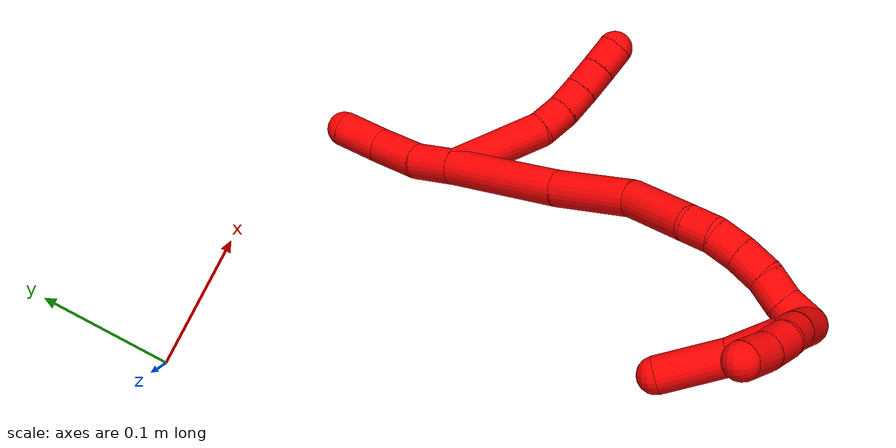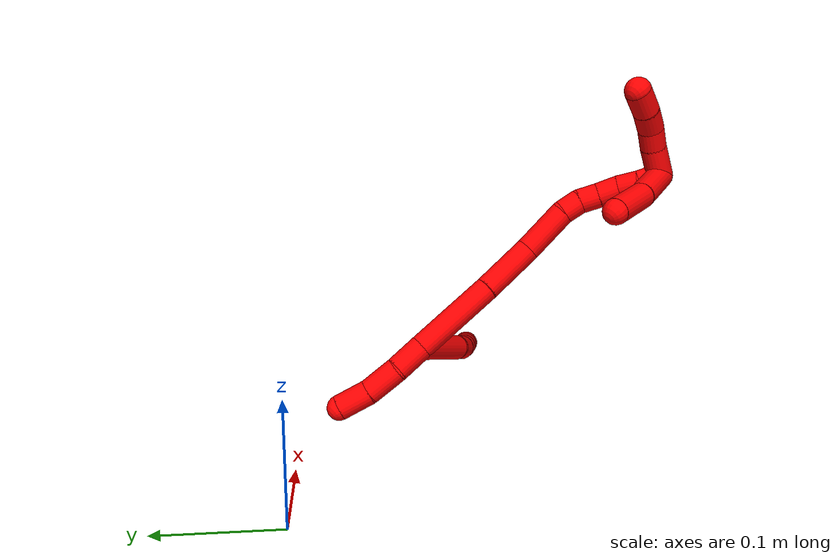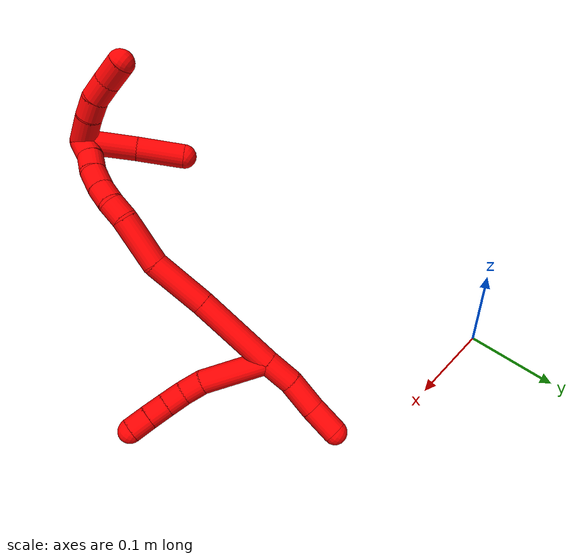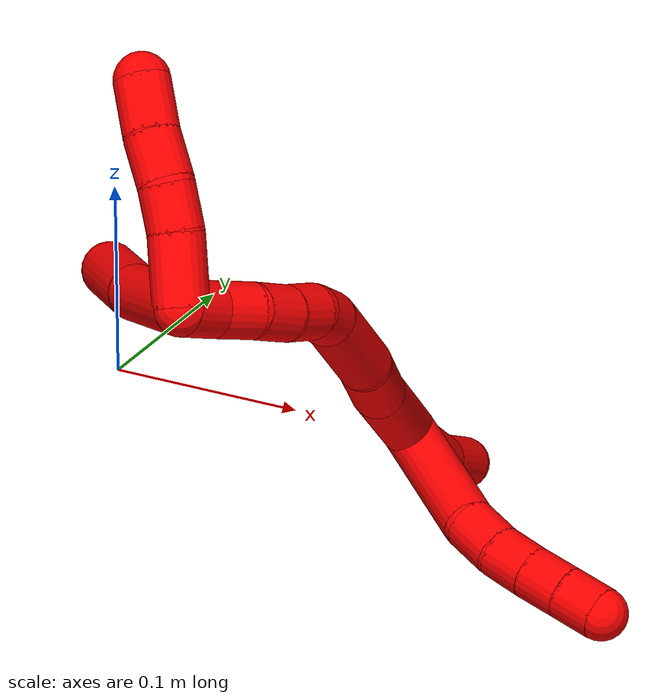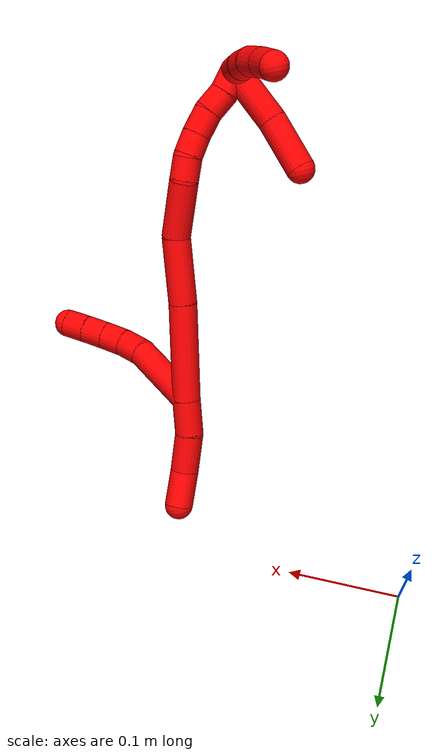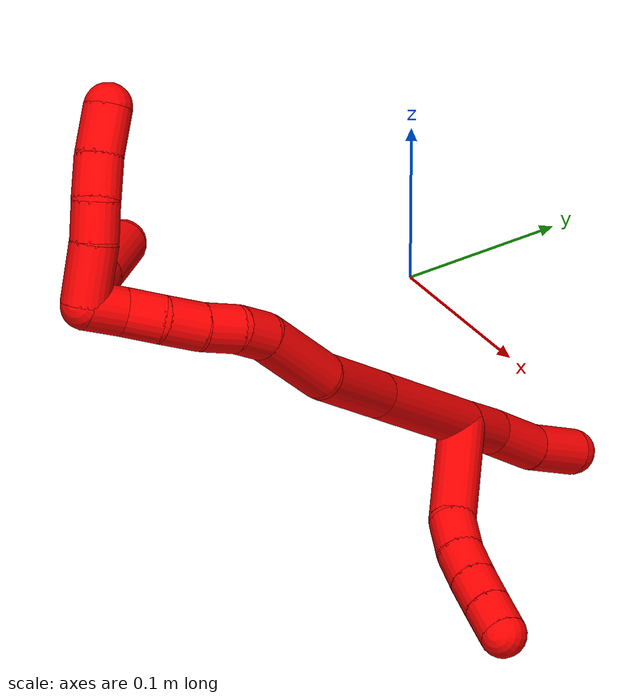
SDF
<sdf version="1.7">
 <world name="default">
  <model name="2">
   <static>0</static>
   <link name="2">
    <collision name="collision-cylinder-e_1_2_8">
     <pose>0.020482 0.019052 0.019681 -0.769148 0.642044 -0.267555</pose>
     <geometry><cylinder><radius>0.0125</radius><length>0.068406</length></cylinder></geometry>
     <surface>
      <friction><ode><mu>1.16</mu><mu2>1.16</mu2><slip1>0</slip1><slip2>0</slip2></ode></friction>
      <contact><ode><kp>1e+06</kp><kd>1</kd><max_vel>0</max_vel><min_depth>0.001</min_depth></ode></contact>
     </surface>
    </collision>
    <visual name="visual-cylinder-e_1_2_8">
     <pose>0.020482 0.019052 0.019681 -0.769148 0.642044 -0.267555</pose>
     <geometry><cylinder><radius>0.0125</radius><length>0.068406</length></cylinder></geometry>
     <material><ambient>1 0 0 1</ambient></material>
    </visual>
    <collision name="collision-cylinder-e_2_8_9">
     <pose>0.046241 0.046231 0.044012 -1.05122 0.513243 -0.302092</pose>
     <geometry><cylinder><radius>0.0125</radius><length>0.021496</length></cylinder></geometry>
     <surface>
      <friction><ode><mu>1.16</mu><mu2>1.16</mu2><slip1>0</slip1><slip2>0</slip2></ode></friction>
      <contact><ode><kp>1e+06</kp><kd>1</kd><max_vel>0</max_vel><min_depth>0.001</min_depth></ode></contact>
     </surface>
    </collision>
    <visual name="visual-cylinder-e_2_8_9">
     <pose>0.046241 0.046231 0.044012 -1.05122 0.513243 -0.302092</pose>
     <geometry><cylinder><radius>0.0125</radius><length>0.021496</length></cylinder></geometry>
     <material><ambient>1 0 0 1</ambient></material>
    </visual>
    <collision name="collision-cylinder-e_3_9_10">
     <pose>0.055128 0.062837 0.052584 -1.13737 0.368758 -0.237266</pose>
     <geometry><cylinder><radius>0.0125</radius><length>0.02003</length></cylinder></geometry>
     <surface>
      <friction><ode><mu>1.16</mu><mu2>1.16</mu2><slip1>0</slip1><slip2>0</slip2></ode></friction>
      <contact><ode><kp>1e+06</kp><kd>1</kd><max_vel>0</max_vel><min_depth>0.001</min_depth></ode></contact>
     </surface>
    </collision>
    <visual name="visual-cylinder-e_3_9_10">
     <pose>0.055128 0.062837 0.052584 -1.13737 0.368758 -0.237266</pose>
     <geometry><cylinder><radius>0.0125</radius><length>0.02003</length></cylinder></geometry>
     <material><ambient>1 0 0 1</ambient></material>
    </visual>
    <collision name="collision-cylinder-e_4_10_11">
     <pose>0.06197 0.079976 0.060394 -1.14901 0.328143 -0.213534</pose>
     <geometry><cylinder><radius>0.0125</radius><length>0.020057</length></cylinder></geometry>
     <surface>
      <friction><ode><mu>1.16</mu><mu2>1.16</mu2><slip1>0</slip1><slip2>0</slip2></ode></friction>
      <contact><ode><kp>1e+06</kp><kd>1</kd><max_vel>0</max_vel><min_depth>0.001</min_depth></ode></contact>
     </surface>
    </collision>
    <visual name="visual-cylinder-e_4_10_11">
     <pose>0.06197 0.079976 0.060394 -1.14901 0.328143 -0.213534</pose>
     <geometry><cylinder><radius>0.0125</radius><length>0.020057</length></cylinder></geometry>
     <material><ambient>1 0 0 1</ambient></material>
    </visual>
    <collision name="collision-cylinder-e_5_11_6">
     <pose>0.068447 0.09737 0.067932 -1.17474 0.33027 -0.220996</pose>
     <geometry><cylinder><radius>0.0125</radius><length>0.020011</length></cylinder></geometry>
     <surface>
      <friction><ode><mu>1.16</mu><mu2>1.16</mu2><slip1>0</slip1><slip2>0</slip2></ode></friction>
      <contact><ode><kp>1e+06</kp><kd>1</kd><max_vel>0</max_vel><min_depth>0.001</min_depth></ode></contact>
     </surface>
    </collision>
    <visual name="visual-cylinder-e_5_11_6">
     <pose>0.068447 0.09737 0.067932 -1.17474 0.33027 -0.220996</pose>
     <geometry><cylinder><radius>0.0125</radius><length>0.020011</length></cylinder></geometry>
     <material><ambient>1 0 0 1</ambient></material>
    </visual>
    <collision name="collision-cylinder-e_1_2_12">
     <pose>0.000296 0.001888 -0.016031 -3.02435 0.018321 -0.309668</pose>
     <geometry><cylinder><radius>0.0125</radius><length>0.032289</length></cylinder></geometry>
     <surface>
      <friction><ode><mu>1.16</mu><mu2>1.16</mu2><slip1>0</slip1><slip2>0</slip2></ode></friction>
      <contact><ode><kp>1e+06</kp><kd>1</kd><max_vel>0</max_vel><min_depth>0.001</min_depth></ode></contact>
     </surface>
    </collision>
    <visual name="visual-cylinder-e_1_2_12">
     <pose>0.000296 0.001888 -0.016031 -3.02435 0.018321 -0.309668</pose>
     <geometry><cylinder><radius>0.0125</radius><length>0.032289</length></cylinder></geometry>
     <material><ambient>1 0 0 1</ambient></material>
    </visual>
    <collision name="collision-cylinder-e_2_12_13">
     <pose>0.000965 0.009284 -0.048757 -2.82292 0.02126 -0.13211</pose>
     <geometry><cylinder><radius>0.0125</radius><length>0.035167</length></cylinder></geometry>
     <surface>
      <friction><ode><mu>1.16</mu><mu2>1.16</mu2><slip1>0</slip1><slip2>0</slip2></ode></friction>
      <contact><ode><kp>1e+06</kp><kd>1</kd><max_vel>0</max_vel><min_depth>0.001</min_depth></ode></contact>
     </surface>
    </collision>
    <visual name="visual-cylinder-e_2_12_13">
     <pose>0.000965 0.009284 -0.048757 -2.82292 0.02126 -0.13211</pose>
     <geometry><cylinder><radius>0.0125</radius><length>0.035167</length></cylinder></geometry>
     <material><ambient>1 0 0 1</ambient></material>
    </visual>
    <collision name="collision-cylinder-e_3_13_5">
     <pose>-0.001392 0.020192 -0.080556 -2.79827 -0.168645 0.907247</pose>
     <geometry><cylinder><radius>0.0125</radius><length>0.032544</length></cylinder></geometry>
     <surface>
      <friction><ode><mu>1.16</mu><mu2>1.16</mu2><slip1>0</slip1><slip2>0</slip2></ode></friction>
      <contact><ode><kp>1e+06</kp><kd>1</kd><max_vel>0</max_vel><min_depth>0.001</min_depth></ode></contact>
     </surface>
    </collision>
    <visual name="visual-cylinder-e_3_13_5">
     <pose>-0.001392 0.020192 -0.080556 -2.79827 -0.168645 0.907247</pose>
     <geometry><cylinder><radius>0.0125</radius><length>0.032544</length></cylinder></geometry>
     <material><ambient>1 0 0 1</ambient></material>
    </visual>
    <collision name="collision-cylinder-e_1_2_14">
     <pose>-0.000984 -0.007086 0.043144 0.162797 -0.022497 -0.001835</pose>
     <geometry><cylinder><radius>0.0125</radius><length>0.087466</length></cylinder></geometry>
     <surface>
      <friction><ode><mu>1.16</mu><mu2>1.16</mu2><slip1>0</slip1><slip2>0</slip2></ode></friction>
      <contact><ode><kp>1e+06</kp><kd>1</kd><max_vel>0</max_vel><min_depth>0.001</min_depth></ode></contact>
     </surface>
    </collision>
    <visual name="visual-cylinder-e_1_2_14">
     <pose>-0.000984 -0.007086 0.043144 0.162797 -0.022497 -0.001835</pose>
     <geometry><cylinder><radius>0.0125</radius><length>0.087466</length></cylinder></geometry>
     <material><ambient>1 0 0 1</ambient></material>
    </visual>
    <collision name="collision-cylinder-e_2_14_15">
     <pose>-0.003022 -0.017182 0.115589 0.102322 -0.035785 -0.001833</pose>
     <geometry><cylinder><radius>0.0125</radius><length>0.058949</length></cylinder></geometry>
     <surface>
      <friction><ode><mu>1.16</mu><mu2>1.16</mu2><slip1>0</slip1><slip2>0</slip2></ode></friction>
      <contact><ode><kp>1e+06</kp><kd>1</kd><max_vel>0</max_vel><min_depth>0.001</min_depth></ode></contact>
     </surface>
    </collision>
    <visual name="visual-cylinder-e_2_14_15">
     <pose>-0.003022 -0.017182 0.115589 0.102322 -0.035785 -0.001833</pose>
     <geometry><cylinder><radius>0.0125</radius><length>0.058949</length></cylinder></geometry>
     <material><ambient>1 0 0 1</ambient></material>
    </visual>
    <collision name="collision-cylinder-e_3_15_16">
     <pose>-0.008559 -0.028861 0.168482 0.352233 -0.176484 -0.031486</pose>
     <geometry><cylinder><radius>0.0125</radius><length>0.051062</length></cylinder></geometry>
     <surface>
      <friction><ode><mu>1.16</mu><mu2>1.16</mu2><slip1>0</slip1><slip2>0</slip2></ode></friction>
      <contact><ode><kp>1e+06</kp><kd>1</kd><max_vel>0</max_vel><min_depth>0.001</min_depth></ode></contact>
     </surface>
    </collision>
    <visual name="visual-cylinder-e_3_15_16">
     <pose>-0.008559 -0.028861 0.168482 0.352233 -0.176484 -0.031486</pose>
     <geometry><cylinder><radius>0.0125</radius><length>0.051062</length></cylinder></geometry>
     <material><ambient>1 0 0 1</ambient></material>
    </visual>
    <collision name="collision-cylinder-e_4_16_17">
     <pose>-0.01231 -0.040926 0.201495 0.345664 0.07294 0.012739</pose>
     <geometry><cylinder><radius>0.0125</radius><length>0.020081</length></cylinder></geometry>
     <surface>
      <friction><ode><mu>1.16</mu><mu2>1.16</mu2><slip1>0</slip1><slip2>0</slip2></ode></friction>
      <contact><ode><kp>1e+06</kp><kd>1</kd><max_vel>0</max_vel><min_depth>0.001</min_depth></ode></contact>
     </surface>
    </collision>
    <visual name="visual-cylinder-e_4_16_17">
     <pose>-0.01231 -0.040926 0.201495 0.345664 0.07294 0.012739</pose>
     <geometry><cylinder><radius>0.0125</radius><length>0.020081</length></cylinder></geometry>
     <material><ambient>1 0 0 1</ambient></material>
    </visual>
    <collision name="collision-cylinder-e_5_17_18">
     <pose>-0.00859 -0.049331 0.219071 0.551118 0.302527 0.086145</pose>
     <geometry><cylinder><radius>0.0125</radius><length>0.020056</length></cylinder></geometry>
     <surface>
      <friction><ode><mu>1.16</mu><mu2>1.16</mu2><slip1>0</slip1><slip2>0</slip2></ode></friction>
      <contact><ode><kp>1e+06</kp><kd>1</kd><max_vel>0</max_vel><min_depth>0.001</min_depth></ode></contact>
     </surface>
    </collision>
    <visual name="visual-cylinder-e_5_17_18">
     <pose>-0.00859 -0.049331 0.219071 0.551118 0.302527 0.086145</pose>
     <geometry><cylinder><radius>0.0125</radius><length>0.020056</length></cylinder></geometry>
     <material><ambient>1 0 0 1</ambient></material>
    </visual>
    <collision name="collision-cylinder-e_6_18_19">
     <pose>-0.003312 -0.060852 0.235572 0.662343 0.213149 0.073534</pose>
     <geometry><cylinder><radius>0.0125</radius><length>0.021656</length></cylinder></geometry>
     <surface>
      <friction><ode><mu>1.16</mu><mu2>1.16</mu2><slip1>0</slip1><slip2>0</slip2></ode></friction>
      <contact><ode><kp>1e+06</kp><kd>1</kd><max_vel>0</max_vel><min_depth>0.001</min_depth></ode></contact>
     </surface>
    </collision>
    <visual name="visual-cylinder-e_6_18_19">
     <pose>-0.003312 -0.060852 0.235572 0.662343 0.213149 0.073534</pose>
     <geometry><cylinder><radius>0.0125</radius><length>0.021656</length></cylinder></geometry>
     <material><ambient>1 0 0 1</ambient></material>
    </visual>
    <collision name="collision-cylinder-e_7_19_20">
     <pose>0.001565 -0.075061 0.250081 0.895808 0.256443 0.123736</pose>
     <geometry><cylinder><radius>0.0125</radius><length>0.020396</length></cylinder></geometry>
     <surface>
      <friction><ode><mu>1.16</mu><mu2>1.16</mu2><slip1>0</slip1><slip2>0</slip2></ode></friction>
      <contact><ode><kp>1e+06</kp><kd>1</kd><max_vel>0</max_vel><min_depth>0.001</min_depth></ode></contact>
     </surface>
    </collision>
    <visual name="visual-cylinder-e_7_19_20">
     <pose>0.001565 -0.075061 0.250081 0.895808 0.256443 0.123736</pose>
     <geometry><cylinder><radius>0.0125</radius><length>0.020396</length></cylinder></geometry>
     <material><ambient>1 0 0 1</ambient></material>
    </visual>
    <collision name="collision-cylinder-e_8_20_1">
     <pose>0.006494 -0.088782 0.264097 0.654073 0.232473 0.079174</pose>
     <geometry><cylinder><radius>0.0125</radius><length>0.020334</length></cylinder></geometry>
     <surface>
      <friction><ode><mu>1.16</mu><mu2>1.16</mu2><slip1>0</slip1><slip2>0</slip2></ode></friction>
      <contact><ode><kp>1e+06</kp><kd>1</kd><max_vel>0</max_vel><min_depth>0.001</min_depth></ode></contact>
     </surface>
    </collision>
    <visual name="visual-cylinder-e_8_20_1">
     <pose>0.006494 -0.088782 0.264097 0.654073 0.232473 0.079174</pose>
     <geometry><cylinder><radius>0.0125</radius><length>0.020334</length></cylinder></geometry>
     <material><ambient>1 0 0 1</ambient></material>
    </visual>
    <collision name="collision-cylinder-e_1_1_21">
     <pose>0.004327 -0.106894 0.249244 2.65222 -0.173511 -0.670368</pose>
     <geometry><cylinder><radius>0.0125</radius><length>0.052233</length></cylinder></geometry>
     <surface>
      <friction><ode><mu>1.16</mu><mu2>1.16</mu2><slip1>0</slip1><slip2>0</slip2></ode></friction>
      <contact><ode><kp>1e+06</kp><kd>1</kd><max_vel>0</max_vel><min_depth>0.001</min_depth></ode></contact>
     </surface>
    </collision>
    <visual name="visual-cylinder-e_1_1_21">
     <pose>0.004327 -0.106894 0.249244 2.65222 -0.173511 -0.670368</pose>
     <geometry><cylinder><radius>0.0125</radius><length>0.052233</length></cylinder></geometry>
     <material><ambient>1 0 0 1</ambient></material>
    </visual>
    <collision name="collision-cylinder-e_2_21_4">
     <pose>-0.007048 -0.127511 0.205312 2.7597 -0.291629 -1.29939</pose>
     <geometry><cylinder><radius>0.0125</radius><length>0.047767</length></cylinder></geometry>
     <surface>
      <friction><ode><mu>1.16</mu><mu2>1.16</mu2><slip1>0</slip1><slip2>0</slip2></ode></friction>
      <contact><ode><kp>1e+06</kp><kd>1</kd><max_vel>0</max_vel><min_depth>0.001</min_depth></ode></contact>
     </surface>
    </collision>
    <visual name="visual-cylinder-e_2_21_4">
     <pose>-0.007048 -0.127511 0.205312 2.7597 -0.291629 -1.29939</pose>
     <geometry><cylinder><radius>0.0125</radius><length>0.047767</length></cylinder></geometry>
     <material><ambient>1 0 0 1</ambient></material>
    </visual>
    <collision name="collision-cylinder-e_1_1_22">
     <pose>-0.006191 -0.099398 0.274464 1.07013 -1.23533 -0.797086</pose>
     <geometry><cylinder><radius>0.0125</radius><length>0.031829</length></cylinder></geometry>
     <surface>
      <friction><ode><mu>1.16</mu><mu2>1.16</mu2><slip1>0</slip1><slip2>0</slip2></ode></friction>
      <contact><ode><kp>1e+06</kp><kd>1</kd><max_vel>0</max_vel><min_depth>0.001</min_depth></ode></contact>
     </surface>
    </collision>
    <visual name="visual-cylinder-e_1_1_22">
     <pose>-0.006191 -0.099398 0.274464 1.07013 -1.23533 -0.797086</pose>
     <geometry><cylinder><radius>0.0125</radius><length>0.031829</length></cylinder></geometry>
     <material><ambient>1 0 0 1</ambient></material>
    </visual>
    <collision name="collision-cylinder-e_2_22_23">
     <pose>-0.030553 -0.108294 0.27835 1.26213 -1.12045 -0.859589</pose>
     <geometry><cylinder><radius>0.0125</radius><length>0.020737</length></cylinder></geometry>
     <surface>
      <friction><ode><mu>1.16</mu><mu2>1.16</mu2><slip1>0</slip1><slip2>0</slip2></ode></friction>
      <contact><ode><kp>1e+06</kp><kd>1</kd><max_vel>0</max_vel><min_depth>0.001</min_depth></ode></contact>
     </surface>
    </collision>
    <visual name="visual-cylinder-e_2_22_23">
     <pose>-0.030553 -0.108294 0.27835 1.26213 -1.12045 -0.859589</pose>
     <geometry><cylinder><radius>0.0125</radius><length>0.020737</length></cylinder></geometry>
     <material><ambient>1 0 0 1</ambient></material>
    </visual>
    <collision name="collision-cylinder-e_3_23_24">
     <pose>-0.049605 -0.118079 0.278767 1.74294 -1.05049 -1.20662</pose>
     <geometry><cylinder><radius>0.0125</radius><length>0.022399</length></cylinder></geometry>
     <surface>
      <friction><ode><mu>1.16</mu><mu2>1.16</mu2><slip1>0</slip1><slip2>0</slip2></ode></friction>
      <contact><ode><kp>1e+06</kp><kd>1</kd><max_vel>0</max_vel><min_depth>0.001</min_depth></ode></contact>
     </surface>
    </collision>
    <visual name="visual-cylinder-e_3_23_24">
     <pose>-0.049605 -0.118079 0.278767 1.74294 -1.05049 -1.20662</pose>
     <geometry><cylinder><radius>0.0125</radius><length>0.022399</length></cylinder></geometry>
     <material><ambient>1 0 0 1</ambient></material>
    </visual>
    <collision name="collision-cylinder-e_4_24_3">
     <pose>-0.07071 -0.128527 0.276267 1.87294 -1.14258 -1.43612</pose>
     <geometry><cylinder><radius>0.0125</radius><length>0.025035</length></cylinder></geometry>
     <surface>
      <friction><ode><mu>1.16</mu><mu2>1.16</mu2><slip1>0</slip1><slip2>0</slip2></ode></friction>
      <contact><ode><kp>1e+06</kp><kd>1</kd><max_vel>0</max_vel><min_depth>0.001</min_depth></ode></contact>
     </surface>
    </collision>
    <visual name="visual-cylinder-e_4_24_3">
     <pose>-0.07071 -0.128527 0.276267 1.87294 -1.14258 -1.43612</pose>
     <geometry><cylinder><radius>0.0125</radius><length>0.025035</length></cylinder></geometry>
     <material><ambient>1 0 0 1</ambient></material>
    </visual>
    <collision name="collision-sphere-3">
     <pose>-0.082097 -0.133489 0.27472 0 -0 0</pose>
     <geometry><sphere><radius>0.0125</radius></sphere></geometry>
     <surface>
      <friction><ode><mu>1.16</mu><mu2>1.16</mu2><slip1>0</slip1><slip2>0</slip2></ode></friction>
      <contact><ode><kp>1e+06</kp><kd>1</kd><max_vel>0</max_vel><min_depth>0.001</min_depth></ode></contact>
     </surface>
    </collision>
    <visual name="visual-sphere-3">
     <pose>-0.082097 -0.133489 0.27472 0 -0 0</pose>
     <geometry><sphere><radius>0.0125</radius></sphere></geometry>
     <material><ambient>1 0 0 1</ambient></material>
    </visual>
    <collision name="collision-sphere-24">
     <pose>-0.059323 -0.123565 0.277813 0 -0 0</pose>
     <geometry><sphere><radius>0.0125</radius></sphere></geometry>
     <surface>
      <friction><ode><mu>1.16</mu><mu2>1.16</mu2><slip1>0</slip1><slip2>0</slip2></ode></friction>
      <contact><ode><kp>1e+06</kp><kd>1</kd><max_vel>0</max_vel><min_depth>0.001</min_depth></ode></contact>
     </surface>
    </collision>
    <visual name="visual-sphere-24">
     <pose>-0.059323 -0.123565 0.277813 0 -0 0</pose>
     <geometry><sphere><radius>0.0125</radius></sphere></geometry>
     <material><ambient>1 0 0 1</ambient></material>
    </visual>
    <collision name="collision-sphere-23">
     <pose>-0.039888 -0.112594 0.279721 0 -0 0</pose>
     <geometry><sphere><radius>0.0125</radius></sphere></geometry>
     <surface>
      <friction><ode><mu>1.16</mu><mu2>1.16</mu2><slip1>0</slip1><slip2>0</slip2></ode></friction>
      <contact><ode><kp>1e+06</kp><kd>1</kd><max_vel>0</max_vel><min_depth>0.001</min_depth></ode></contact>
     </surface>
    </collision>
    <visual name="visual-sphere-23">
     <pose>-0.039888 -0.112594 0.279721 0 -0 0</pose>
     <geometry><sphere><radius>0.0125</radius></sphere></geometry>
     <material><ambient>1 0 0 1</ambient></material>
    </visual>
    <collision name="collision-sphere-22">
     <pose>-0.021218 -0.103994 0.276979 0 -0 0</pose>
     <geometry><sphere><radius>0.0125</radius></sphere></geometry>
     <surface>
      <friction><ode><mu>1.16</mu><mu2>1.16</mu2><slip1>0</slip1><slip2>0</slip2></ode></friction>
      <contact><ode><kp>1e+06</kp><kd>1</kd><max_vel>0</max_vel><min_depth>0.001</min_depth></ode></contact>
     </surface>
    </collision>
    <visual name="visual-sphere-22">
     <pose>-0.021218 -0.103994 0.276979 0 -0 0</pose>
     <geometry><sphere><radius>0.0125</radius></sphere></geometry>
     <material><ambient>1 0 0 1</ambient></material>
    </visual>
    <collision name="collision-sphere-4">
     <pose>-0.013915 -0.136037 0.184085 0 -0 0</pose>
     <geometry><sphere><radius>0.0125</radius></sphere></geometry>
     <surface>
      <friction><ode><mu>1.16</mu><mu2>1.16</mu2><slip1>0</slip1><slip2>0</slip2></ode></friction>
      <contact><ode><kp>1e+06</kp><kd>1</kd><max_vel>0</max_vel><min_depth>0.001</min_depth></ode></contact>
     </surface>
    </collision>
    <visual name="visual-sphere-4">
     <pose>-0.013915 -0.136037 0.184085 0 -0 0</pose>
     <geometry><sphere><radius>0.0125</radius></sphere></geometry>
     <material><ambient>1 0 0 1</ambient></material>
    </visual>
    <collision name="collision-sphere-21">
     <pose>-0.000181 -0.118986 0.226539 0 -0 0</pose>
     <geometry><sphere><radius>0.0125</radius></sphere></geometry>
     <surface>
      <friction><ode><mu>1.16</mu><mu2>1.16</mu2><slip1>0</slip1><slip2>0</slip2></ode></friction>
      <contact><ode><kp>1e+06</kp><kd>1</kd><max_vel>0</max_vel><min_depth>0.001</min_depth></ode></contact>
     </surface>
    </collision>
    <visual name="visual-sphere-21">
     <pose>-0.000181 -0.118986 0.226539 0 -0 0</pose>
     <geometry><sphere><radius>0.0125</radius></sphere></geometry>
     <material><ambient>1 0 0 1</ambient></material>
    </visual>
    <collision name="collision-sphere-1">
     <pose>0.008836 -0.094802 0.271949 0 -0 0</pose>
     <geometry><sphere><radius>0.0125</radius></sphere></geometry>
     <surface>
      <friction><ode><mu>1.16</mu><mu2>1.16</mu2><slip1>0</slip1><slip2>0</slip2></ode></friction>
      <contact><ode><kp>1e+06</kp><kd>1</kd><max_vel>0</max_vel><min_depth>0.001</min_depth></ode></contact>
     </surface>
    </collision>
    <visual name="visual-sphere-1">
     <pose>0.008836 -0.094802 0.271949 0 -0 0</pose>
     <geometry><sphere><radius>0.0125</radius></sphere></geometry>
     <material><ambient>1 0 0 1</ambient></material>
    </visual>
    <collision name="collision-sphere-6">
     <pose>0.071692 0.106102 0.071583 0 -0 0</pose>
     <geometry><sphere><radius>0.0125</radius></sphere></geometry>
     <surface>
      <friction><ode><mu>1.16</mu><mu2>1.16</mu2><slip1>0</slip1><slip2>0</slip2></ode></friction>
      <contact><ode><kp>1e+06</kp><kd>1</kd><max_vel>0</max_vel><min_depth>0.001</min_depth></ode></contact>
     </surface>
    </collision>
    <visual name="visual-sphere-6">
     <pose>0.071692 0.106102 0.071583 0 -0 0</pose>
     <geometry><sphere><radius>0.0125</radius></sphere></geometry>
     <material><ambient>1 0 0 1</ambient></material>
    </visual>
    <collision name="collision-sphere-11">
     <pose>0.065202 0.088637 0.06428 0 -0 0</pose>
     <geometry><sphere><radius>0.0125</radius></sphere></geometry>
     <surface>
      <friction><ode><mu>1.16</mu><mu2>1.16</mu2><slip1>0</slip1><slip2>0</slip2></ode></friction>
      <contact><ode><kp>1e+06</kp><kd>1</kd><max_vel>0</max_vel><min_depth>0.001</min_depth></ode></contact>
     </surface>
    </collision>
    <visual name="visual-sphere-11">
     <pose>0.065202 0.088637 0.06428 0 -0 0</pose>
     <geometry><sphere><radius>0.0125</radius></sphere></geometry>
     <material><ambient>1 0 0 1</ambient></material>
    </visual>
    <collision name="collision-sphere-10">
     <pose>0.058738 0.071314 0.056507 0 -0 0</pose>
     <geometry><sphere><radius>0.0125</radius></sphere></geometry>
     <surface>
      <friction><ode><mu>1.16</mu><mu2>1.16</mu2><slip1>0</slip1><slip2>0</slip2></ode></friction>
      <contact><ode><kp>1e+06</kp><kd>1</kd><max_vel>0</max_vel><min_depth>0.001</min_depth></ode></contact>
     </surface>
    </collision>
    <visual name="visual-sphere-10">
     <pose>0.058738 0.071314 0.056507 0 -0 0</pose>
     <geometry><sphere><radius>0.0125</radius></sphere></geometry>
     <material><ambient>1 0 0 1</ambient></material>
    </visual>
    <collision name="collision-sphere-9">
     <pose>0.051518 0.054359 0.048661 0 -0 0</pose>
     <geometry><sphere><radius>0.0125</radius></sphere></geometry>
     <surface>
      <friction><ode><mu>1.16</mu><mu2>1.16</mu2><slip1>0</slip1><slip2>0</slip2></ode></friction>
      <contact><ode><kp>1e+06</kp><kd>1</kd><max_vel>0</max_vel><min_depth>0.001</min_depth></ode></contact>
     </surface>
    </collision>
    <visual name="visual-sphere-9">
     <pose>0.051518 0.054359 0.048661 0 -0 0</pose>
     <geometry><sphere><radius>0.0125</radius></sphere></geometry>
     <material><ambient>1 0 0 1</ambient></material>
    </visual>
    <collision name="collision-sphere-2">
     <geometry><sphere><radius>0.0125</radius></sphere></geometry>
     <surface>
      <friction><ode><mu>1.16</mu><mu2>1.16</mu2><slip1>0</slip1><slip2>0</slip2></ode></friction>
      <contact><ode><kp>1e+06</kp><kd>1</kd><max_vel>0</max_vel><min_depth>0.001</min_depth></ode></contact>
     </surface>
    </collision>
    <visual name="visual-sphere-2">
     <geometry><sphere><radius>0.0125</radius></sphere></geometry>
     <material><ambient>1 0 0 1</ambient></material>
    </visual>
    <collision name="collision-sphere-19">
     <pose>-0.001022 -0.06736 0.243917 0 -0 0</pose>
     <geometry><sphere><radius>0.0125</radius></sphere></geometry>
     <surface>
      <friction><ode><mu>1.16</mu><mu2>1.16</mu2><slip1>0</slip1><slip2>0</slip2></ode></friction>
      <contact><ode><kp>1e+06</kp><kd>1</kd><max_vel>0</max_vel><min_depth>0.001</min_depth></ode></contact>
     </surface>
    </collision>
    <visual name="visual-sphere-19">
     <pose>-0.001022 -0.06736 0.243917 0 -0 0</pose>
     <geometry><sphere><radius>0.0125</radius></sphere></geometry>
     <material><ambient>1 0 0 1</ambient></material>
    </visual>
    <collision name="collision-sphere-8">
     <pose>0.040964 0.038104 0.039363 0 -0 0</pose>
     <geometry><sphere><radius>0.0125</radius></sphere></geometry>
     <surface>
      <friction><ode><mu>1.16</mu><mu2>1.16</mu2><slip1>0</slip1><slip2>0</slip2></ode></friction>
      <contact><ode><kp>1e+06</kp><kd>1</kd><max_vel>0</max_vel><min_depth>0.001</min_depth></ode></contact>
     </surface>
    </collision>
    <visual name="visual-sphere-8">
     <pose>0.040964 0.038104 0.039363 0 -0 0</pose>
     <geometry><sphere><radius>0.0125</radius></sphere></geometry>
     <material><ambient>1 0 0 1</ambient></material>
    </visual>
    <collision name="collision-sphere-12">
     <pose>0.000592 0.003776 -0.032062 0 -0 0</pose>
     <geometry><sphere><radius>0.0125</radius></sphere></geometry>
     <surface>
      <friction><ode><mu>1.16</mu><mu2>1.16</mu2><slip1>0</slip1><slip2>0</slip2></ode></friction>
      <contact><ode><kp>1e+06</kp><kd>1</kd><max_vel>0</max_vel><min_depth>0.001</min_depth></ode></contact>
     </surface>
    </collision>
    <visual name="visual-sphere-12">
     <pose>0.000592 0.003776 -0.032062 0 -0 0</pose>
     <geometry><sphere><radius>0.0125</radius></sphere></geometry>
     <material><ambient>1 0 0 1</ambient></material>
    </visual>
    <collision name="collision-sphere-13">
     <pose>0.001339 0.014792 -0.065451 0 -0 0</pose>
     <geometry><sphere><radius>0.0125</radius></sphere></geometry>
     <surface>
      <friction><ode><mu>1.16</mu><mu2>1.16</mu2><slip1>0</slip1><slip2>0</slip2></ode></friction>
      <contact><ode><kp>1e+06</kp><kd>1</kd><max_vel>0</max_vel><min_depth>0.001</min_depth></ode></contact>
     </surface>
    </collision>
    <visual name="visual-sphere-13">
     <pose>0.001339 0.014792 -0.065451 0 -0 0</pose>
     <geometry><sphere><radius>0.0125</radius></sphere></geometry>
     <material><ambient>1 0 0 1</ambient></material>
    </visual>
    <collision name="collision-sphere-5">
     <pose>-0.004123 0.025591 -0.095661 0 -0 0</pose>
     <geometry><sphere><radius>0.0125</radius></sphere></geometry>
     <surface>
      <friction><ode><mu>1.16</mu><mu2>1.16</mu2><slip1>0</slip1><slip2>0</slip2></ode></friction>
      <contact><ode><kp>1e+06</kp><kd>1</kd><max_vel>0</max_vel><min_depth>0.001</min_depth></ode></contact>
     </surface>
    </collision>
    <visual name="visual-sphere-5">
     <pose>-0.004123 0.025591 -0.095661 0 -0 0</pose>
     <geometry><sphere><radius>0.0125</radius></sphere></geometry>
     <material><ambient>1 0 0 1</ambient></material>
    </visual>
    <collision name="collision-sphere-14">
     <pose>-0.001968 -0.014173 0.086288 0 -0 0</pose>
     <geometry><sphere><radius>0.0125</radius></sphere></geometry>
     <surface>
      <friction><ode><mu>1.16</mu><mu2>1.16</mu2><slip1>0</slip1><slip2>0</slip2></ode></friction>
      <contact><ode><kp>1e+06</kp><kd>1</kd><max_vel>0</max_vel><min_depth>0.001</min_depth></ode></contact>
     </surface>
    </collision>
    <visual name="visual-sphere-14">
     <pose>-0.001968 -0.014173 0.086288 0 -0 0</pose>
     <geometry><sphere><radius>0.0125</radius></sphere></geometry>
     <material><ambient>1 0 0 1</ambient></material>
    </visual>
    <collision name="collision-sphere-15">
     <pose>-0.004077 -0.02019 0.144891 0 -0 0</pose>
     <geometry><sphere><radius>0.0125</radius></sphere></geometry>
     <surface>
      <friction><ode><mu>1.16</mu><mu2>1.16</mu2><slip1>0</slip1><slip2>0</slip2></ode></friction>
      <contact><ode><kp>1e+06</kp><kd>1</kd><max_vel>0</max_vel><min_depth>0.001</min_depth></ode></contact>
     </surface>
    </collision>
    <visual name="visual-sphere-15">
     <pose>-0.004077 -0.02019 0.144891 0 -0 0</pose>
     <geometry><sphere><radius>0.0125</radius></sphere></geometry>
     <material><ambient>1 0 0 1</ambient></material>
    </visual>
    <collision name="collision-sphere-16">
     <pose>-0.013042 -0.037533 0.192073 0 -0 0</pose>
     <geometry><sphere><radius>0.0125</radius></sphere></geometry>
     <surface>
      <friction><ode><mu>1.16</mu><mu2>1.16</mu2><slip1>0</slip1><slip2>0</slip2></ode></friction>
      <contact><ode><kp>1e+06</kp><kd>1</kd><max_vel>0</max_vel><min_depth>0.001</min_depth></ode></contact>
     </surface>
    </collision>
    <visual name="visual-sphere-16">
     <pose>-0.013042 -0.037533 0.192073 0 -0 0</pose>
     <geometry><sphere><radius>0.0125</radius></sphere></geometry>
     <material><ambient>1 0 0 1</ambient></material>
    </visual>
    <collision name="collision-sphere-17">
     <pose>-0.011578 -0.044318 0.210916 0 -0 0</pose>
     <geometry><sphere><radius>0.0125</radius></sphere></geometry>
     <surface>
      <friction><ode><mu>1.16</mu><mu2>1.16</mu2><slip1>0</slip1><slip2>0</slip2></ode></friction>
      <contact><ode><kp>1e+06</kp><kd>1</kd><max_vel>0</max_vel><min_depth>0.001</min_depth></ode></contact>
     </surface>
    </collision>
    <visual name="visual-sphere-17">
     <pose>-0.011578 -0.044318 0.210916 0 -0 0</pose>
     <geometry><sphere><radius>0.0125</radius></sphere></geometry>
     <material><ambient>1 0 0 1</ambient></material>
    </visual>
    <collision name="collision-sphere-18">
     <pose>-0.005603 -0.054344 0.227227 0 -0 0</pose>
     <geometry><sphere><radius>0.0125</radius></sphere></geometry>
     <surface>
      <friction><ode><mu>1.16</mu><mu2>1.16</mu2><slip1>0</slip1><slip2>0</slip2></ode></friction>
      <contact><ode><kp>1e+06</kp><kd>1</kd><max_vel>0</max_vel><min_depth>0.001</min_depth></ode></contact>
     </surface>
    </collision>
    <visual name="visual-sphere-18">
     <pose>-0.005603 -0.054344 0.227227 0 -0 0</pose>
     <geometry><sphere><radius>0.0125</radius></sphere></geometry>
     <material><ambient>1 0 0 1</ambient></material>
    </visual>
    <collision name="collision-sphere-20">
     <pose>0.004152 -0.082763 0.256246 0 -0 0</pose>
     <geometry><sphere><radius>0.0125</radius></sphere></geometry>
     <surface>
      <friction><ode><mu>1.16</mu><mu2>1.16</mu2><slip1>0</slip1><slip2>0</slip2></ode></friction>
      <contact><ode><kp>1e+06</kp><kd>1</kd><max_vel>0</max_vel><min_depth>0.001</min_depth></ode></contact>
     </surface>
    </collision>
    <visual name="visual-sphere-20">
     <pose>0.004152 -0.082763 0.256246 0 -0 0</pose>
     <geometry><sphere><radius>0.0125</radius></sphere></geometry>
     <material><ambient>1 0 0 1</ambient></material>
    </visual>
    <inertial>
     <pose>0.001679 -0.032487 0.126346 0 -0 0</pose>
     <mass>0.75</mass>
     <inertia><ixx>0.000123</ixx><ixy>0</ixy><ixz>0</ixz><iyy>7.8e-05</iyy><iyz>0</iyz><izz>2e-05</izz></inertia>
    </inertial>
   </link>
   <pose>0.220596 -0.11658 0.068048 -0.304918 0.931706 -1.48795</pose>
  </model>
 </world>
</sdf>
